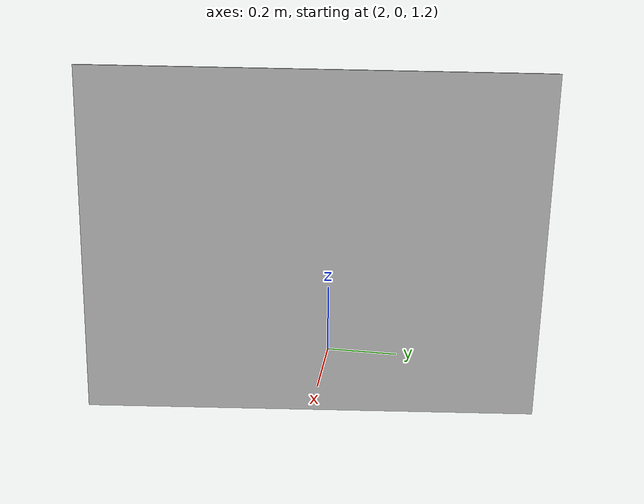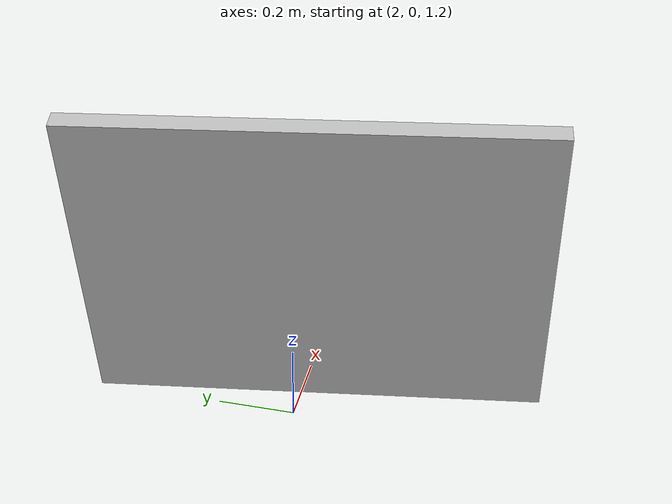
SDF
<sdf version="1.7">
 <world name="default">
  <model name="ground_plane">
   <static>1</static>
   <link name="link">
    <collision name="collision">
     <geometry><plane><normal>0 0 1</normal><size>100 100</size></plane></geometry>
     <surface>
      <contact><collide_bitmask>65535</collide_bitmask></contact>
      <friction><ode><mu>100</mu><mu2>50</mu2></ode></friction>
     </surface>
    </collision>
    <visual name="visual">
     <cast_shadows>0</cast_shadows>
     <geometry><plane><normal>0 0 1</normal><size>100 100</size></plane></geometry>
     <material>
      <script><uri>file://media/materials/scripts/gazebo.material</uri><name>Gazebo/Grey</name></script>
     </material>
    </visual>
   </link>
  </model>
  <light name="sun" type="directional">
   <pose>0 0 10 0 -0 0</pose>
   <diffuse>0.8 0.8 0.8 1</diffuse>
   <specular>0.2 0.2 0.2 1</specular>
   <attenuation>
    <range>1000</range>
    <constant>0.9</constant>
    <linear>0.01</linear>
    <quadraic>0.001</quadraic>
   </attenuation>
   <direction>-0.5 0.1 -0.9</direction>
   <spot><inner_angle>0</inner_angle><outer_angle>0</outer_angle><falloff>0</falloff></spot>
  </light>
  <gravity>0 0 -9.8</gravity>
  <magnetic_field>6e-06 2.3e-05 -4.2e-05</magnetic_field>
  <atmosphere type="adiabatic"/>
  <physics type="ode">
   <max_step_size>0.001</max_step_size>
   <real_time_factor>1</real_time_factor>
   <real_time_update_rate>1000</real_time_update_rate>
  </physics>
  <scene><ambient>0.4 0.4 0.4 1</ambient><background>0.7 0.7 0.7 1</background><shadows>1</shadows></scene>
  <spherical_coordinates>
   <surface_model>EARTH_WGS84</surface_model>
   <latitude_deg>0</latitude_deg>
   <longitude_deg>0</longitude_deg>
   <elevation>0</elevation>
   <heading_deg>0</heading_deg>
  </spherical_coordinates>
  <light name="user_point_light_2" type="point">
   <pose>-1.07079 1.08955 1 0 -0 0</pose>
   <diffuse>0.5 0.5 0.5 1</diffuse>
   <specular>0.1 0.1 0.1 1</specular>
   <attenuation>
    <range>20</range>
    <constant>0.5</constant>
    <linear>0.01</linear>
    <quadratic>0.001</quadratic>
   </attenuation>
   <cast_shadows>0</cast_shadows>
   <direction>0 0 -1</direction>
   <spot><inner_angle>0</inner_angle><outer_angle>0</outer_angle><falloff>0</falloff></spot>
  </light>
  <light name="user_point_light_4" type="point">
   <pose>1.52353 0.764558 1 0 -0 0</pose>
   <diffuse>0.5 0.5 0.5 1</diffuse>
   <specular>0.1 0.1 0.1 1</specular>
   <attenuation>
    <range>20</range>
    <constant>0.5</constant>
    <linear>0.01</linear>
    <quadratic>0.001</quadratic>
   </attenuation>
   <cast_shadows>0</cast_shadows>
   <direction>0 0 -1</direction>
   <spot><inner_angle>0</inner_angle><outer_angle>0</outer_angle><falloff>0</falloff></spot>
  </light>
  <light name="user_point_light_8" type="point">
   <pose>0.979869 2.09916 1 0 -0 0</pose>
   <diffuse>0.5 0.5 0.5 1</diffuse>
   <specular>0.1 0.1 0.1 1</specular>
   <attenuation>
    <range>20</range>
    <constant>0.5</constant>
    <linear>0.01</linear>
    <quadratic>0.001</quadratic>
   </attenuation>
   <cast_shadows>0</cast_shadows>
   <direction>0 0 -1</direction>
   <spot><inner_angle>0</inner_angle><outer_angle>0</outer_angle><falloff>0</falloff></spot>
  </light>
  <light name="user_point_light_9" type="point">
   <pose>0.07472 3.93797 1 0 -0 0</pose>
   <diffuse>0.5 0.5 0.5 1</diffuse>
   <specular>0.1 0.1 0.1 1</specular>
   <attenuation>
    <range>20</range>
    <constant>0.5</constant>
    <linear>0.01</linear>
    <quadratic>0.001</quadratic>
   </attenuation>
   <cast_shadows>0</cast_shadows>
   <direction>0 0 -1</direction>
   <spot><inner_angle>0</inner_angle><outer_angle>0</outer_angle><falloff>0</falloff></spot>
  </light>
  <light name="user_point_light_0" type="point">
   <pose>0.288943 -0.55574 1 0 -0 0</pose>
   <diffuse>0.5 0.5 0.5 1</diffuse>
   <specular>0.1 0.1 0.1 1</specular>
   <attenuation>
    <range>20</range>
    <constant>0.5</constant>
    <linear>0.01</linear>
    <quadratic>0.001</quadratic>
   </attenuation>
   <cast_shadows>0</cast_shadows>
   <direction>0 0 -1</direction>
   <spot><inner_angle>0</inner_angle><outer_angle>0</outer_angle><falloff>0</falloff></spot>
  </light>
  <light name="user_point_light_1" type="point">
   <pose>0.349209 0.561748 1 0 -0 0</pose>
   <diffuse>0.5 0.5 0.5 1</diffuse>
   <specular>0.1 0.1 0.1 1</specular>
   <attenuation>
    <range>20</range>
    <constant>0.5</constant>
    <linear>0.01</linear>
    <quadratic>0.001</quadratic>
   </attenuation>
   <cast_shadows>0</cast_shadows>
   <direction>0 0 -1</direction>
   <spot><inner_angle>0</inner_angle><outer_angle>0</outer_angle><falloff>0</falloff></spot>
  </light>
  <light name="user_point_light_3" type="point">
   <pose>0.080416 2.2112 1 0 -0 0</pose>
   <diffuse>0.5 0.5 0.5 1</diffuse>
   <specular>0.1 0.1 0.1 1</specular>
   <attenuation>
    <range>20</range>
    <constant>0.5</constant>
    <linear>0.01</linear>
    <quadratic>0.001</quadratic>
   </attenuation>
   <cast_shadows>0</cast_shadows>
   <direction>0 0 -1</direction>
   <spot><inner_angle>0</inner_angle><outer_angle>0</outer_angle><falloff>0</falloff></spot>
  </light>
  <model name="chessboard_1200x900_10x7">
   <static>1</static>
   <link name="charuco">
    <visual name="chessboard_1200x900_10x7">
     <geometry><mesh><uri>model://chessboard_1200x900_10x7/chessboard_1200x900_10x7.dae</uri></mesh></geometry>
    </visual>
    <collision name="chessboard_1200x900_10x7">
     <geometry><mesh><uri>model://chessboard_1200x900_10x7/chessboard_1200x900_10x7.dae</uri></mesh></geometry>
    </collision>
   </link>
   <pose>1.98281 0.415251 1.86354 -1.40122 -0.017793 -1.42762</pose>
  </model>
 </world>
</sdf>
